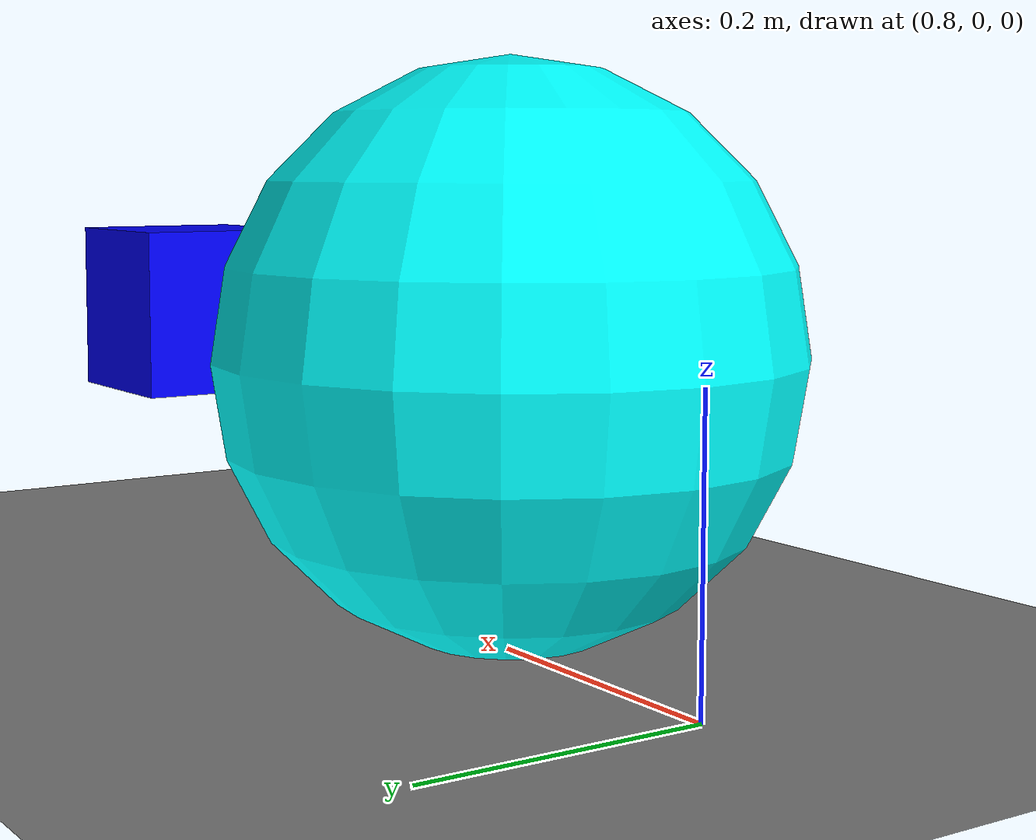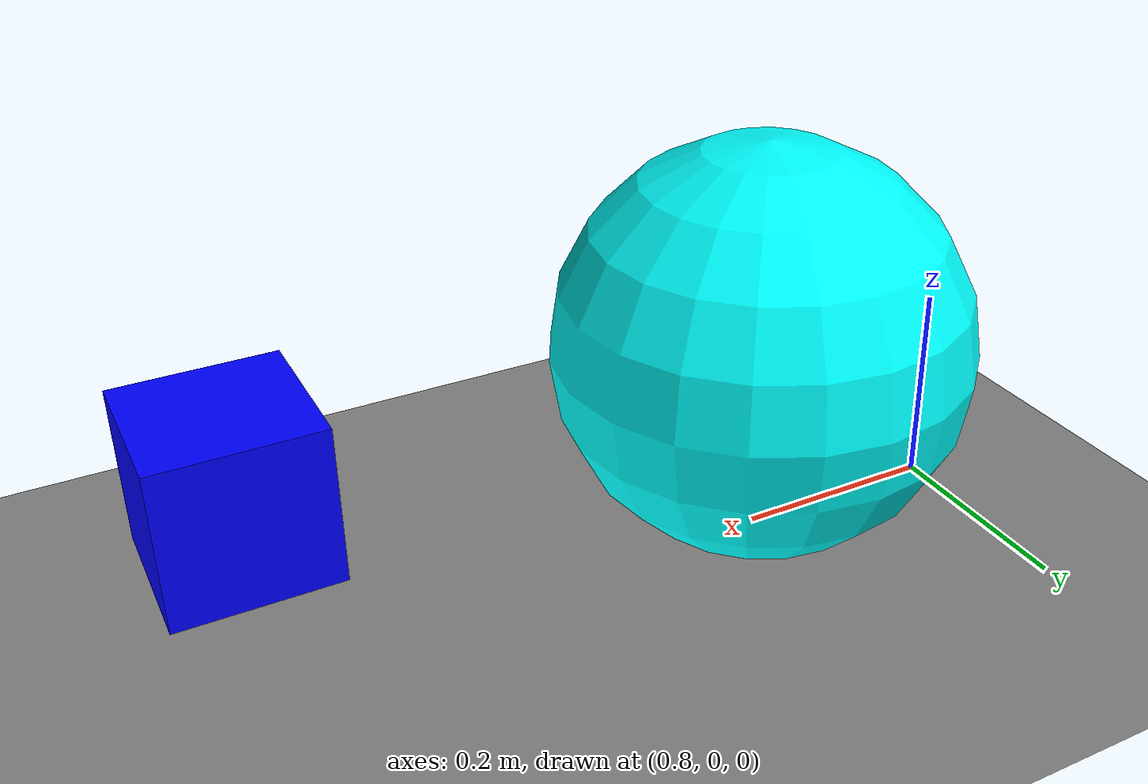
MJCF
<mujoco model="ballRob">
  <compiler angle="radian" autolimits="true"/>
  	<compiler angle="radian"/>
	<option timestep="0.002" integrator="RK4" solver="CG" gravity="0 0 -9.81">
		<flag contact="enable" multiccd="enable"/>
	</option>

  <default>
        <geom condim="4" solimp="0.99 0.99 0" solref="0.01 1" friction="1 0.06 0.001"/>
    </default>

	<asset>
    <texture type="skybox" builtin="gradient" rgb1="1 1 1" rgb2=".6 .8 1" width="256" height="256"/>
		<texture name="grid" type="2d" builtin="checker" width="112" height="112" rgb1="0 0 0" rgb2="1 1 1" />
		<material name="grid" texture="grid" texrepeat="1 1" texuniform="true" reflectance=".2" />
	</asset>

	<worldbody>
		<geom name="floor" size="0 0 .05" type="plane" material="grid" condim="3" />
		<light diffuse="1 1 1" pos="0 0 5" dir="0 0 -1" />
		<light diffuse="1 1 1" pos="2 -1 5" dir="0 0 -1" />
		<light diffuse="1 1 1" pos="1 1 5" dir="0 0 -1" />
	</worldbody>
  <worldbody>
    <body name="box_link" pos="1.5 0 0.2">
      <freejoint/>
      <geom name="blue_box" type="box" size="0.07 0.07 0.07"  rgba="0 0 1 1"/>
    </body>
    <body name="ball_dummy" pos="1 0 0.2" mocap="true">
        <geom type="box" size="0.02 0.02 0.02" contype="0" conaffinity="0"/>
    </body>
    <body name="ball" pos="1 0 0.2">
      <freejoint/>
      <geom name="ball" type="sphere" size="0.2" rgba="0 1 1 1" friction=".1 .1 .1" mass="1"/>
    </body>
    <equality>
        <weld body1="ball_dummy" body2="ball"/>
    </equality>
  </worldbody>
</mujoco>
